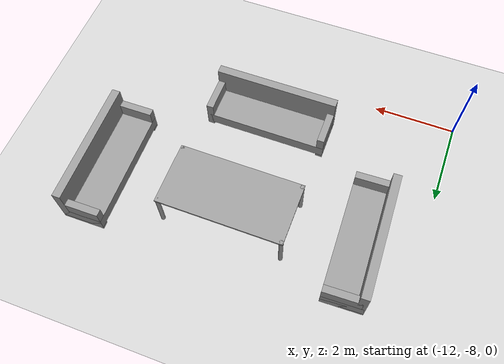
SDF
<sdf version="1.6">
 <world name="default">
  <model name="ground_plane">
   <static>1</static>
   <link name="link">
    <collision name="collision">
     <geometry><plane><normal>0 0 1</normal><size>100 100</size></plane></geometry>
     <surface><friction><ode><mu>100</mu><mu2>50</mu2></ode></friction></surface>
    </collision>
    <visual name="visual">
     <cast_shadows>0</cast_shadows>
     <geometry><plane><normal>0 0 1</normal><size>100 100</size></plane></geometry>
     <material>
      <script><uri>file://media/materials/scripts/gazebo.material</uri><name>Gazebo/Grey</name></script>
     </material>
    </visual>
   </link>
  </model>
  <model name="diningTable_1">
   <link name="link_0">
    <pose>-1.45 -0.7 -0.015 0 -0 0</pose>
    <inertial>
     <mass>1</mass>
     <inertia><ixx>0.145833</ixx><ixy>0</ixy><ixz>0</ixz><iyy>0.145833</iyy><iyz>0</iyz><izz>0.125</izz></inertia>
    </inertial>
    <visual name="visual">
     <geometry><cylinder><radius>0.05</radius><length>1</length></cylinder></geometry>
     <material>
      <lighting>1</lighting>
      <script><uri>file://media/materials/scripts/gazebo.material</uri><name>Gazebo/Grey</name></script>
      <shader type="pixel"><normal_map>__default__</normal_map></shader>
      <ambient>0.3 0.3 0.3 1</ambient>
      <diffuse>0.7 0.7 0.7 1</diffuse>
      <specular>0.01 0.01 0.01 1</specular>
      <emissive>0 0 0 1</emissive>
     </material>
    </visual>
    <collision name="collision">
     <geometry><cylinder><radius>0.05</radius><length>1</length></cylinder></geometry>
     <surface>
      <friction>
       <ode><mu>1</mu><mu2>1</mu2><fdir1>0 0 0</fdir1><slip1>0</slip1><slip2>0</slip2></ode>
       <torsional>
        <coefficient>1</coefficient>
        <patch_radius>0</patch_radius>
        <surface_radius>0</surface_radius>
        <use_patch_radius>1</use_patch_radius>
        <ode><slip>0</slip></ode>
       </torsional>
      </friction>
      <bounce><restitution_coefficient>0</restitution_coefficient><threshold>1e+06</threshold></bounce>
      <contact>
       <collide_without_contact>0</collide_without_contact>
       <collide_without_contact_bitmask>1</collide_without_contact_bitmask>
       <collide_bitmask>1</collide_bitmask>
       <ode>
        <soft_cfm>0</soft_cfm>
        <soft_erp>0.2</soft_erp>
        <kp>1e+13</kp>
        <kd>1</kd>
        <max_vel>0.01</max_vel>
        <min_depth>0</min_depth>
       </ode>
       <bullet>
        <split_impulse>1</split_impulse>
        <split_impulse_penetration_threshold>-0.01</split_impulse_penetration_threshold>
        <soft_cfm>0</soft_cfm>
        <soft_erp>0.2</soft_erp>
        <kp>1e+13</kp>
        <kd>1</kd>
       </bullet>
      </contact>
     </surface>
    </collision>
   </link>
   <link name="link_0_clone">
    <pose>1.45 0.7 -0.015 0 -0 0</pose>
    <inertial>
     <mass>1</mass>
     <inertia><ixx>0.145833</ixx><ixy>0</ixy><ixz>0</ixz><iyy>0.145833</iyy><iyz>0</iyz><izz>0.125</izz></inertia>
    </inertial>
    <visual name="visual">
     <geometry><cylinder><radius>0.05</radius><length>1</length></cylinder></geometry>
     <material>
      <lighting>1</lighting>
      <script><uri>file://media/materials/scripts/gazebo.material</uri><name>Gazebo/Grey</name></script>
      <shader type="pixel"><normal_map>__default__</normal_map></shader>
      <ambient>0.3 0.3 0.3 1</ambient>
      <diffuse>0.7 0.7 0.7 1</diffuse>
      <specular>0.01 0.01 0.01 1</specular>
      <emissive>0 0 0 1</emissive>
     </material>
    </visual>
    <collision name="collision">
     <geometry><cylinder><radius>0.05</radius><length>1</length></cylinder></geometry>
     <surface>
      <friction>
       <ode><mu>1</mu><mu2>1</mu2><fdir1>0 0 0</fdir1><slip1>0</slip1><slip2>0</slip2></ode>
       <torsional>
        <coefficient>1</coefficient>
        <patch_radius>0</patch_radius>
        <surface_radius>0</surface_radius>
        <use_patch_radius>1</use_patch_radius>
        <ode><slip>0</slip></ode>
       </torsional>
      </friction>
      <bounce><restitution_coefficient>0</restitution_coefficient><threshold>1e+06</threshold></bounce>
      <contact>
       <collide_without_contact>0</collide_without_contact>
       <collide_without_contact_bitmask>1</collide_without_contact_bitmask>
       <collide_bitmask>1</collide_bitmask>
       <ode>
        <soft_cfm>0</soft_cfm>
        <soft_erp>0.2</soft_erp>
        <kp>1e+13</kp>
        <kd>1</kd>
        <max_vel>0.01</max_vel>
        <min_depth>0</min_depth>
       </ode>
       <bullet>
        <split_impulse>1</split_impulse>
        <split_impulse_penetration_threshold>-0.01</split_impulse_penetration_threshold>
        <soft_cfm>0</soft_cfm>
        <soft_erp>0.2</soft_erp>
        <kp>1e+13</kp>
        <kd>1</kd>
       </bullet>
      </contact>
     </surface>
    </collision>
   </link>
   <link name="link_0_clone_0">
    <pose>1.45 -0.7 -0.015 0 -0 0</pose>
    <inertial>
     <mass>1</mass>
     <inertia><ixx>0.145833</ixx><ixy>0</ixy><ixz>0</ixz><iyy>0.145833</iyy><iyz>0</iyz><izz>0.125</izz></inertia>
    </inertial>
    <visual name="visual">
     <geometry><cylinder><radius>0.05</radius><length>1</length></cylinder></geometry>
     <material>
      <lighting>1</lighting>
      <script><uri>file://media/materials/scripts/gazebo.material</uri><name>Gazebo/Grey</name></script>
      <shader type="pixel"><normal_map>__default__</normal_map></shader>
      <ambient>0.3 0.3 0.3 1</ambient>
      <diffuse>0.7 0.7 0.7 1</diffuse>
      <specular>0.01 0.01 0.01 1</specular>
      <emissive>0 0 0 1</emissive>
     </material>
    </visual>
    <collision name="collision">
     <geometry><cylinder><radius>0.05</radius><length>1</length></cylinder></geometry>
     <surface>
      <friction>
       <ode><mu>1</mu><mu2>1</mu2><fdir1>0 0 0</fdir1><slip1>0</slip1><slip2>0</slip2></ode>
       <torsional>
        <coefficient>1</coefficient>
        <patch_radius>0</patch_radius>
        <surface_radius>0</surface_radius>
        <use_patch_radius>1</use_patch_radius>
        <ode><slip>0</slip></ode>
       </torsional>
      </friction>
      <bounce><restitution_coefficient>0</restitution_coefficient><threshold>1e+06</threshold></bounce>
      <contact>
       <collide_without_contact>0</collide_without_contact>
       <collide_without_contact_bitmask>1</collide_without_contact_bitmask>
       <collide_bitmask>1</collide_bitmask>
       <ode>
        <soft_cfm>0</soft_cfm>
        <soft_erp>0.2</soft_erp>
        <kp>1e+13</kp>
        <kd>1</kd>
        <max_vel>0.01</max_vel>
        <min_depth>0</min_depth>
       </ode>
       <bullet>
        <split_impulse>1</split_impulse>
        <split_impulse_penetration_threshold>-0.01</split_impulse_penetration_threshold>
        <soft_cfm>0</soft_cfm>
        <soft_erp>0.2</soft_erp>
        <kp>1e+13</kp>
        <kd>1</kd>
       </bullet>
      </contact>
     </surface>
    </collision>
   </link>
   <link name="link_0_clone_1">
    <pose>-1.45 0.7 -0.015 0 -0 0</pose>
    <inertial>
     <mass>1</mass>
     <inertia><ixx>0.145833</ixx><ixy>0</ixy><ixz>0</ixz><iyy>0.145833</iyy><iyz>0</iyz><izz>0.125</izz></inertia>
    </inertial>
    <visual name="visual">
     <geometry><cylinder><radius>0.05</radius><length>1</length></cylinder></geometry>
     <material>
      <lighting>1</lighting>
      <script><uri>file://media/materials/scripts/gazebo.material</uri><name>Gazebo/Grey</name></script>
      <shader type="pixel"><normal_map>__default__</normal_map></shader>
      <ambient>0.3 0.3 0.3 1</ambient>
      <diffuse>0.7 0.7 0.7 1</diffuse>
      <specular>0.01 0.01 0.01 1</specular>
      <emissive>0 0 0 1</emissive>
     </material>
    </visual>
    <collision name="collision">
     <geometry><cylinder><radius>0.05</radius><length>1</length></cylinder></geometry>
     <surface>
      <friction>
       <ode><mu>1</mu><mu2>1</mu2><fdir1>0 0 0</fdir1><slip1>0</slip1><slip2>0</slip2></ode>
       <torsional>
        <coefficient>1</coefficient>
        <patch_radius>0</patch_radius>
        <surface_radius>0</surface_radius>
        <use_patch_radius>1</use_patch_radius>
        <ode><slip>0</slip></ode>
       </torsional>
      </friction>
      <bounce><restitution_coefficient>0</restitution_coefficient><threshold>1e+06</threshold></bounce>
      <contact>
       <collide_without_contact>0</collide_without_contact>
       <collide_without_contact_bitmask>1</collide_without_contact_bitmask>
       <collide_bitmask>1</collide_bitmask>
       <ode>
        <soft_cfm>0</soft_cfm>
        <soft_erp>0.2</soft_erp>
        <kp>1e+13</kp>
        <kd>1</kd>
        <max_vel>0.01</max_vel>
        <min_depth>0</min_depth>
       </ode>
       <bullet>
        <split_impulse>1</split_impulse>
        <split_impulse_penetration_threshold>-0.01</split_impulse_penetration_threshold>
        <soft_cfm>0</soft_cfm>
        <soft_erp>0.2</soft_erp>
        <kp>1e+13</kp>
        <kd>1</kd>
       </bullet>
      </contact>
     </surface>
    </collision>
   </link>
   <link name="link_1">
    <pose>-0 -0 0.06 0 -0 0</pose>
    <inertial>
     <mass>1</mass>
     <inertia>
      <ixx>0.166667</ixx>
      <ixy>0</ixy>
      <ixz>0</ixz>
      <iyy>0.166667</iyy>
      <iyz>0</iyz>
      <izz>0.166667</izz>
     </inertia>
    </inertial>
    <visual name="visual">
     <pose>0 0 0.4 0 -0 0</pose>
     <geometry><box><size>3 1.5 0.05</size></box></geometry>
     <material>
      <lighting>1</lighting>
      <script><uri>file://media/materials/scripts/gazebo.material</uri><name>Gazebo/Grey</name></script>
      <shader type="pixel"><normal_map>__default__</normal_map></shader>
      <ambient>0.3 0.3 0.3 1</ambient>
      <diffuse>0.7 0.7 0.7 1</diffuse>
      <specular>0.01 0.01 0.01 1</specular>
      <emissive>0 0 0 1</emissive>
     </material>
    </visual>
    <collision name="collision">
     <pose>0 0 0.4 0 -0 0</pose>
     <geometry><box><size>3 1.5 0.05</size></box></geometry>
     <surface>
      <friction>
       <ode><mu>1</mu><mu2>1</mu2><fdir1>0 0 0</fdir1><slip1>0</slip1><slip2>0</slip2></ode>
       <torsional>
        <coefficient>1</coefficient>
        <patch_radius>0</patch_radius>
        <surface_radius>0</surface_radius>
        <use_patch_radius>1</use_patch_radius>
        <ode><slip>0</slip></ode>
       </torsional>
      </friction>
      <bounce><restitution_coefficient>0</restitution_coefficient><threshold>1e+06</threshold></bounce>
      <contact>
       <collide_without_contact>0</collide_without_contact>
       <collide_without_contact_bitmask>1</collide_without_contact_bitmask>
       <collide_bitmask>1</collide_bitmask>
       <ode>
        <soft_cfm>0</soft_cfm>
        <soft_erp>0.2</soft_erp>
        <kp>1e+13</kp>
        <kd>1</kd>
        <max_vel>0.01</max_vel>
        <min_depth>0</min_depth>
       </ode>
       <bullet>
        <split_impulse>1</split_impulse>
        <split_impulse_penetration_threshold>-0.01</split_impulse_penetration_threshold>
        <soft_cfm>0</soft_cfm>
        <soft_erp>0.2</soft_erp>
        <kp>1e+13</kp>
        <kd>1</kd>
       </bullet>
      </contact>
     </surface>
    </collision>
   </link>
   <joint name="link_1_JOINT_4" type="fixed">
    <parent>link_1</parent>
    <child>link_0_clone</child>
    <physics>
     <ode><limit><cfm>0</cfm><erp>0.2</erp></limit><suspension><cfm>0</cfm><erp>0.2</erp></suspension></ode>
    </physics>
   </joint>
   <joint name="link_1_JOINT_5" type="revolute">
    <parent>link_1</parent>
    <child>link_0_clone_0</child>
    <axis>
     <xyz>1 0 0</xyz>
     <use_parent_model_frame>0</use_parent_model_frame>
     <limit>
      <lower>-1.79769e+308</lower>
      <upper>1.79769e+308</upper>
      <effort>-1</effort>
      <velocity>-1</velocity>
     </limit>
     <dynamics>
      <spring_reference>0</spring_reference>
      <spring_stiffness>0</spring_stiffness>
      <damping>0</damping>
     </dynamics>
    </axis>
    <physics>
     <ode><limit><cfm>0</cfm><erp>0.2</erp></limit><suspension><cfm>0</cfm><erp>0.2</erp></suspension></ode>
    </physics>
   </joint>
   <joint name="link_1_JOINT_6" type="fixed">
    <parent>link_1</parent>
    <child>link_0_clone_1</child>
    <physics>
     <ode><limit><cfm>0</cfm><erp>0.2</erp></limit><suspension><cfm>0</cfm><erp>0.2</erp></suspension></ode>
    </physics>
   </joint>
   <joint name="link_1_JOINT_7" type="fixed">
    <parent>link_1</parent>
    <child>link_0</child>
    <physics>
     <ode><limit><cfm>0</cfm><erp>0.2</erp></limit><suspension><cfm>0</cfm><erp>0.2</erp></suspension></ode>
    </physics>
   </joint>
   <static>0</static>
   <pose>-7.61085 -4.02853 0.514998 0 -2e-06 -0.002081</pose>
  </model>
  <model name="couch">
   <link name="link_5">
    <pose>0 0.1 -0.1525 0 -0 0</pose>
    <inertial>
     <mass>1</mass>
     <inertia>
      <ixx>0.166667</ixx>
      <ixy>0</ixy>
      <ixz>0</ixz>
      <iyy>0.166667</iyy>
      <iyz>0</iyz>
      <izz>0.166667</izz>
     </inertia>
    </inertial>
    <visual name="visual">
     <geometry><box><size>3 1 0.3</size></box></geometry>
     <material>
      <lighting>1</lighting>
      <script><uri>file://media/materials/scripts/gazebo.material</uri><name>Gazebo/Grey</name></script>
      <shader type="pixel"><normal_map>__default__</normal_map></shader>
      <ambient>0.3 0.3 0.3 1</ambient>
      <diffuse>0.7 0.7 0.7 1</diffuse>
      <specular>0.01 0.01 0.01 1</specular>
      <emissive>0 0 0 1</emissive>
     </material>
    </visual>
    <collision name="collision">
     <geometry><box><size>3 1 0.3</size></box></geometry>
     <surface>
      <friction>
       <ode><mu>1</mu><mu2>1</mu2><fdir1>0 0 0</fdir1><slip1>0</slip1><slip2>0</slip2></ode>
       <torsional>
        <coefficient>1</coefficient>
        <patch_radius>0</patch_radius>
        <surface_radius>0</surface_radius>
        <use_patch_radius>1</use_patch_radius>
        <ode><slip>0</slip></ode>
       </torsional>
      </friction>
      <bounce><restitution_coefficient>0</restitution_coefficient><threshold>1e+06</threshold></bounce>
      <contact>
       <collide_without_contact>0</collide_without_contact>
       <collide_without_contact_bitmask>1</collide_without_contact_bitmask>
       <collide_bitmask>1</collide_bitmask>
       <ode>
        <soft_cfm>0</soft_cfm>
        <soft_erp>0.2</soft_erp>
        <kp>1e+13</kp>
        <kd>1</kd>
        <max_vel>0.01</max_vel>
        <min_depth>0</min_depth>
       </ode>
       <bullet>
        <split_impulse>1</split_impulse>
        <split_impulse_penetration_threshold>-0.01</split_impulse_penetration_threshold>
        <soft_cfm>0</soft_cfm>
        <soft_erp>0.2</soft_erp>
        <kp>1e+13</kp>
        <kd>1</kd>
       </bullet>
      </contact>
     </surface>
    </collision>
   </link>
   <link name="link_6">
    <pose>0 -0.3 0.1975 0 -0 0</pose>
    <inertial>
     <mass>1</mass>
     <inertia>
      <ixx>0.166667</ixx>
      <ixy>0</ixy>
      <ixz>0</ixz>
      <iyy>0.166667</iyy>
      <iyz>0</iyz>
      <izz>0.166667</izz>
     </inertia>
    </inertial>
    <visual name="visual">
     <geometry><box><size>3 0.2 1</size></box></geometry>
     <material>
      <lighting>1</lighting>
      <script><uri>file://media/materials/scripts/gazebo.material</uri><name>Gazebo/Grey</name></script>
      <shader type="pixel"><normal_map>__default__</normal_map></shader>
      <ambient>0.3 0.3 0.3 1</ambient>
      <diffuse>0.7 0.7 0.7 1</diffuse>
      <specular>0.01 0.01 0.01 1</specular>
      <emissive>0 0 0 1</emissive>
     </material>
    </visual>
    <collision name="collision">
     <geometry><box><size>3 0.2 1</size></box></geometry>
     <surface>
      <friction>
       <ode><mu>1</mu><mu2>1</mu2><fdir1>0 0 0</fdir1><slip1>0</slip1><slip2>0</slip2></ode>
       <torsional>
        <coefficient>1</coefficient>
        <patch_radius>0</patch_radius>
        <surface_radius>0</surface_radius>
        <use_patch_radius>1</use_patch_radius>
        <ode><slip>0</slip></ode>
       </torsional>
      </friction>
      <bounce><restitution_coefficient>0</restitution_coefficient><threshold>1e+06</threshold></bounce>
      <contact>
       <collide_without_contact>0</collide_without_contact>
       <collide_without_contact_bitmask>1</collide_without_contact_bitmask>
       <collide_bitmask>1</collide_bitmask>
       <ode>
        <soft_cfm>0</soft_cfm>
        <soft_erp>0.2</soft_erp>
        <kp>1e+13</kp>
        <kd>1</kd>
        <max_vel>0.01</max_vel>
        <min_depth>0</min_depth>
       </ode>
       <bullet>
        <split_impulse>1</split_impulse>
        <split_impulse_penetration_threshold>-0.01</split_impulse_penetration_threshold>
        <soft_cfm>0</soft_cfm>
        <soft_erp>0.2</soft_erp>
        <kp>1e+13</kp>
        <kd>1</kd>
       </bullet>
      </contact>
     </surface>
    </collision>
   </link>
   <link name="link_7">
    <pose>-1.415 0.1 -0.0225 0 -0 0</pose>
    <inertial>
     <mass>1</mass>
     <inertia>
      <ixx>0.166667</ixx>
      <ixy>0</ixy>
      <ixz>0</ixz>
      <iyy>0.166667</iyy>
      <iyz>0</iyz>
      <izz>0.166667</izz>
     </inertia>
    </inertial>
    <visual name="visual">
     <geometry><box><size>0.17 1 0.7</size></box></geometry>
     <material>
      <lighting>1</lighting>
      <script><uri>file://media/materials/scripts/gazebo.material</uri><name>Gazebo/Grey</name></script>
      <shader type="pixel"><normal_map>__default__</normal_map></shader>
      <ambient>0.3 0.3 0.3 1</ambient>
      <diffuse>0.7 0.7 0.7 1</diffuse>
      <specular>0.01 0.01 0.01 1</specular>
      <emissive>0 0 0 1</emissive>
     </material>
    </visual>
    <collision name="collision">
     <geometry><box><size>0.17 1 0.7</size></box></geometry>
     <surface>
      <friction>
       <ode><mu>1</mu><mu2>1</mu2><fdir1>0 0 0</fdir1><slip1>0</slip1><slip2>0</slip2></ode>
       <torsional>
        <coefficient>1</coefficient>
        <patch_radius>0</patch_radius>
        <surface_radius>0</surface_radius>
        <use_patch_radius>1</use_patch_radius>
        <ode><slip>0</slip></ode>
       </torsional>
      </friction>
      <bounce><restitution_coefficient>0</restitution_coefficient><threshold>1e+06</threshold></bounce>
      <contact>
       <collide_without_contact>0</collide_without_contact>
       <collide_without_contact_bitmask>1</collide_without_contact_bitmask>
       <collide_bitmask>1</collide_bitmask>
       <ode>
        <soft_cfm>0</soft_cfm>
        <soft_erp>0.2</soft_erp>
        <kp>1e+13</kp>
        <kd>1</kd>
        <max_vel>0.01</max_vel>
        <min_depth>0</min_depth>
       </ode>
       <bullet>
        <split_impulse>1</split_impulse>
        <split_impulse_penetration_threshold>-0.01</split_impulse_penetration_threshold>
        <soft_cfm>0</soft_cfm>
        <soft_erp>0.2</soft_erp>
        <kp>1e+13</kp>
        <kd>1</kd>
       </bullet>
      </contact>
     </surface>
    </collision>
   </link>
   <link name="link_7_clone">
    <pose>1.415 0.1 -0.0225 0 -0 0</pose>
    <inertial>
     <mass>1</mass>
     <inertia>
      <ixx>0.166667</ixx>
      <ixy>0</ixy>
      <ixz>0</ixz>
      <iyy>0.166667</iyy>
      <iyz>0</iyz>
      <izz>0.166667</izz>
     </inertia>
    </inertial>
    <visual name="visual">
     <geometry><box><size>0.17 1 0.7</size></box></geometry>
     <material>
      <lighting>1</lighting>
      <script><uri>file://media/materials/scripts/gazebo.material</uri><name>Gazebo/Grey</name></script>
      <shader type="pixel"><normal_map>__default__</normal_map></shader>
      <ambient>0.3 0.3 0.3 1</ambient>
      <diffuse>0.7 0.7 0.7 1</diffuse>
      <specular>0.01 0.01 0.01 1</specular>
      <emissive>0 0 0 1</emissive>
     </material>
    </visual>
    <collision name="collision">
     <geometry><box><size>0.17 1 0.7</size></box></geometry>
     <surface>
      <friction>
       <ode><mu>1</mu><mu2>1</mu2><fdir1>0 0 0</fdir1><slip1>0</slip1><slip2>0</slip2></ode>
       <torsional>
        <coefficient>1</coefficient>
        <patch_radius>0</patch_radius>
        <surface_radius>0</surface_radius>
        <use_patch_radius>1</use_patch_radius>
        <ode><slip>0</slip></ode>
       </torsional>
      </friction>
      <bounce><restitution_coefficient>0</restitution_coefficient><threshold>1e+06</threshold></bounce>
      <contact>
       <collide_without_contact>0</collide_without_contact>
       <collide_without_contact_bitmask>1</collide_without_contact_bitmask>
       <collide_bitmask>1</collide_bitmask>
       <ode>
        <soft_cfm>0</soft_cfm>
        <soft_erp>0.2</soft_erp>
        <kp>1e+13</kp>
        <kd>1</kd>
        <max_vel>0.01</max_vel>
        <min_depth>0</min_depth>
       </ode>
       <bullet>
        <split_impulse>1</split_impulse>
        <split_impulse_penetration_threshold>-0.01</split_impulse_penetration_threshold>
        <soft_cfm>0</soft_cfm>
        <soft_erp>0.2</soft_erp>
        <kp>1e+13</kp>
        <kd>1</kd>
       </bullet>
      </contact>
     </surface>
    </collision>
   </link>
   <joint name="link_5_JOINT_19" type="fixed">
    <parent>link_5</parent>
    <child>link_7_clone</child>
    <physics>
     <ode><limit><cfm>0</cfm><erp>0.2</erp></limit><suspension><cfm>0</cfm><erp>0.2</erp></suspension></ode>
    </physics>
   </joint>
   <joint name="link_5_JOINT_20" type="revolute">
    <parent>link_5</parent>
    <child>link_7</child>
    <axis>
     <xyz>1 0 0</xyz>
     <use_parent_model_frame>0</use_parent_model_frame>
     <limit>
      <lower>-1.79769e+308</lower>
      <upper>1.79769e+308</upper>
      <effort>-1</effort>
      <velocity>-1</velocity>
     </limit>
     <dynamics>
      <spring_reference>0</spring_reference>
      <spring_stiffness>0</spring_stiffness>
      <damping>0</damping>
     </dynamics>
    </axis>
    <physics>
     <ode><limit><cfm>0</cfm><erp>0.2</erp></limit><suspension><cfm>0</cfm><erp>0.2</erp></suspension></ode>
    </physics>
   </joint>
   <joint name="link_6_JOINT_18" type="fixed">
    <parent>link_6</parent>
    <child>link_5</child>
    <physics>
     <ode><limit><cfm>0</cfm><erp>0.2</erp></limit><suspension><cfm>0</cfm><erp>0.2</erp></suspension></ode>
    </physics>
   </joint>
   <static>0</static>
   <pose>-7.62403 -6.76572 0.3725 0 -0 0.000506</pose>
  </model>
  <model name="couch_clone">
   <link name="link_5">
    <pose>0 0.1 -0.1525 0 -0 0</pose>
    <inertial>
     <mass>1</mass>
     <inertia>
      <ixx>0.166667</ixx>
      <ixy>0</ixy>
      <ixz>0</ixz>
      <iyy>0.166667</iyy>
      <iyz>0</iyz>
      <izz>0.166667</izz>
     </inertia>
    </inertial>
    <visual name="visual">
     <geometry><box><size>3 1 0.3</size></box></geometry>
     <material>
      <lighting>1</lighting>
      <script><uri>file://media/materials/scripts/gazebo.material</uri><name>Gazebo/Grey</name></script>
      <shader type="pixel"><normal_map>__default__</normal_map></shader>
      <ambient>0.3 0.3 0.3 1</ambient>
      <diffuse>0.7 0.7 0.7 1</diffuse>
      <specular>0.01 0.01 0.01 1</specular>
      <emissive>0 0 0 1</emissive>
     </material>
    </visual>
    <collision name="collision">
     <geometry><box><size>3 1 0.3</size></box></geometry>
     <surface>
      <friction>
       <ode><mu>1</mu><mu2>1</mu2><fdir1>0 0 0</fdir1><slip1>0</slip1><slip2>0</slip2></ode>
       <torsional>
        <coefficient>1</coefficient>
        <patch_radius>0</patch_radius>
        <surface_radius>0</surface_radius>
        <use_patch_radius>1</use_patch_radius>
        <ode><slip>0</slip></ode>
       </torsional>
      </friction>
      <bounce><restitution_coefficient>0</restitution_coefficient><threshold>1e+06</threshold></bounce>
      <contact>
       <collide_without_contact>0</collide_without_contact>
       <collide_without_contact_bitmask>1</collide_without_contact_bitmask>
       <collide_bitmask>1</collide_bitmask>
       <ode>
        <soft_cfm>0</soft_cfm>
        <soft_erp>0.2</soft_erp>
        <kp>1e+13</kp>
        <kd>1</kd>
        <max_vel>0.01</max_vel>
        <min_depth>0</min_depth>
       </ode>
       <bullet>
        <split_impulse>1</split_impulse>
        <split_impulse_penetration_threshold>-0.01</split_impulse_penetration_threshold>
        <soft_cfm>0</soft_cfm>
        <soft_erp>0.2</soft_erp>
        <kp>1e+13</kp>
        <kd>1</kd>
       </bullet>
      </contact>
     </surface>
    </collision>
   </link>
   <link name="link_6">
    <pose>0 -0.3 0.1975 0 -0 0</pose>
    <inertial>
     <mass>1</mass>
     <inertia>
      <ixx>0.166667</ixx>
      <ixy>0</ixy>
      <ixz>0</ixz>
      <iyy>0.166667</iyy>
      <iyz>0</iyz>
      <izz>0.166667</izz>
     </inertia>
    </inertial>
    <visual name="visual">
     <geometry><box><size>3 0.2 1</size></box></geometry>
     <material>
      <lighting>1</lighting>
      <script><uri>file://media/materials/scripts/gazebo.material</uri><name>Gazebo/Grey</name></script>
      <shader type="pixel"><normal_map>__default__</normal_map></shader>
      <ambient>0.3 0.3 0.3 1</ambient>
      <diffuse>0.7 0.7 0.7 1</diffuse>
      <specular>0.01 0.01 0.01 1</specular>
      <emissive>0 0 0 1</emissive>
     </material>
    </visual>
    <collision name="collision">
     <geometry><box><size>3 0.2 1</size></box></geometry>
     <surface>
      <friction>
       <ode><mu>1</mu><mu2>1</mu2><fdir1>0 0 0</fdir1><slip1>0</slip1><slip2>0</slip2></ode>
       <torsional>
        <coefficient>1</coefficient>
        <patch_radius>0</patch_radius>
        <surface_radius>0</surface_radius>
        <use_patch_radius>1</use_patch_radius>
        <ode><slip>0</slip></ode>
       </torsional>
      </friction>
      <bounce><restitution_coefficient>0</restitution_coefficient><threshold>1e+06</threshold></bounce>
      <contact>
       <collide_without_contact>0</collide_without_contact>
       <collide_without_contact_bitmask>1</collide_without_contact_bitmask>
       <collide_bitmask>1</collide_bitmask>
       <ode>
        <soft_cfm>0</soft_cfm>
        <soft_erp>0.2</soft_erp>
        <kp>1e+13</kp>
        <kd>1</kd>
        <max_vel>0.01</max_vel>
        <min_depth>0</min_depth>
       </ode>
       <bullet>
        <split_impulse>1</split_impulse>
        <split_impulse_penetration_threshold>-0.01</split_impulse_penetration_threshold>
        <soft_cfm>0</soft_cfm>
        <soft_erp>0.2</soft_erp>
        <kp>1e+13</kp>
        <kd>1</kd>
       </bullet>
      </contact>
     </surface>
    </collision>
   </link>
   <link name="link_7">
    <pose>-1.415 0.1 -0.0225 0 -0 0</pose>
    <inertial>
     <mass>1</mass>
     <inertia>
      <ixx>0.166667</ixx>
      <ixy>0</ixy>
      <ixz>0</ixz>
      <iyy>0.166667</iyy>
      <iyz>0</iyz>
      <izz>0.166667</izz>
     </inertia>
    </inertial>
    <visual name="visual">
     <geometry><box><size>0.17 1 0.7</size></box></geometry>
     <material>
      <lighting>1</lighting>
      <script><uri>file://media/materials/scripts/gazebo.material</uri><name>Gazebo/Grey</name></script>
      <shader type="pixel"><normal_map>__default__</normal_map></shader>
      <ambient>0.3 0.3 0.3 1</ambient>
      <diffuse>0.7 0.7 0.7 1</diffuse>
      <specular>0.01 0.01 0.01 1</specular>
      <emissive>0 0 0 1</emissive>
     </material>
    </visual>
    <collision name="collision">
     <geometry><box><size>0.17 1 0.7</size></box></geometry>
     <surface>
      <friction>
       <ode><mu>1</mu><mu2>1</mu2><fdir1>0 0 0</fdir1><slip1>0</slip1><slip2>0</slip2></ode>
       <torsional>
        <coefficient>1</coefficient>
        <patch_radius>0</patch_radius>
        <surface_radius>0</surface_radius>
        <use_patch_radius>1</use_patch_radius>
        <ode><slip>0</slip></ode>
       </torsional>
      </friction>
      <bounce><restitution_coefficient>0</restitution_coefficient><threshold>1e+06</threshold></bounce>
      <contact>
       <collide_without_contact>0</collide_without_contact>
       <collide_without_contact_bitmask>1</collide_without_contact_bitmask>
       <collide_bitmask>1</collide_bitmask>
       <ode>
        <soft_cfm>0</soft_cfm>
        <soft_erp>0.2</soft_erp>
        <kp>1e+13</kp>
        <kd>1</kd>
        <max_vel>0.01</max_vel>
        <min_depth>0</min_depth>
       </ode>
       <bullet>
        <split_impulse>1</split_impulse>
        <split_impulse_penetration_threshold>-0.01</split_impulse_penetration_threshold>
        <soft_cfm>0</soft_cfm>
        <soft_erp>0.2</soft_erp>
        <kp>1e+13</kp>
        <kd>1</kd>
       </bullet>
      </contact>
     </surface>
    </collision>
   </link>
   <link name="link_7_clone">
    <pose>1.415 0.1 -0.0225 0 -0 0</pose>
    <inertial>
     <mass>1</mass>
     <inertia>
      <ixx>0.166667</ixx>
      <ixy>0</ixy>
      <ixz>0</ixz>
      <iyy>0.166667</iyy>
      <iyz>0</iyz>
      <izz>0.166667</izz>
     </inertia>
    </inertial>
    <visual name="visual">
     <geometry><box><size>0.17 1 0.7</size></box></geometry>
     <material>
      <lighting>1</lighting>
      <script><uri>file://media/materials/scripts/gazebo.material</uri><name>Gazebo/Grey</name></script>
      <shader type="pixel"><normal_map>__default__</normal_map></shader>
      <ambient>0.3 0.3 0.3 1</ambient>
      <diffuse>0.7 0.7 0.7 1</diffuse>
      <specular>0.01 0.01 0.01 1</specular>
      <emissive>0 0 0 1</emissive>
     </material>
    </visual>
    <collision name="collision">
     <geometry><box><size>0.17 1 0.7</size></box></geometry>
     <surface>
      <friction>
       <ode><mu>1</mu><mu2>1</mu2><fdir1>0 0 0</fdir1><slip1>0</slip1><slip2>0</slip2></ode>
       <torsional>
        <coefficient>1</coefficient>
        <patch_radius>0</patch_radius>
        <surface_radius>0</surface_radius>
        <use_patch_radius>1</use_patch_radius>
        <ode><slip>0</slip></ode>
       </torsional>
      </friction>
      <bounce><restitution_coefficient>0</restitution_coefficient><threshold>1e+06</threshold></bounce>
      <contact>
       <collide_without_contact>0</collide_without_contact>
       <collide_without_contact_bitmask>1</collide_without_contact_bitmask>
       <collide_bitmask>1</collide_bitmask>
       <ode>
        <soft_cfm>0</soft_cfm>
        <soft_erp>0.2</soft_erp>
        <kp>1e+13</kp>
        <kd>1</kd>
        <max_vel>0.01</max_vel>
        <min_depth>0</min_depth>
       </ode>
       <bullet>
        <split_impulse>1</split_impulse>
        <split_impulse_penetration_threshold>-0.01</split_impulse_penetration_threshold>
        <soft_cfm>0</soft_cfm>
        <soft_erp>0.2</soft_erp>
        <kp>1e+13</kp>
        <kd>1</kd>
       </bullet>
      </contact>
     </surface>
    </collision>
   </link>
   <joint name="link_5_JOINT_19" type="fixed">
    <parent>link_5</parent>
    <child>link_7_clone</child>
    <physics>
     <ode><limit><cfm>0</cfm><erp>0.2</erp></limit><suspension><cfm>0</cfm><erp>0.2</erp></suspension></ode>
    </physics>
   </joint>
   <joint name="link_5_JOINT_20" type="revolute">
    <parent>link_5</parent>
    <child>link_7</child>
    <axis>
     <xyz>1 0 0</xyz>
     <use_parent_model_frame>0</use_parent_model_frame>
     <limit>
      <lower>-1.79769e+308</lower>
      <upper>1.79769e+308</upper>
      <effort>-1</effort>
      <velocity>-1</velocity>
     </limit>
     <dynamics>
      <spring_reference>0</spring_reference>
      <spring_stiffness>0</spring_stiffness>
      <damping>0</damping>
     </dynamics>
    </axis>
    <physics>
     <ode><limit><cfm>0</cfm><erp>0.2</erp></limit><suspension><cfm>0</cfm><erp>0.2</erp></suspension></ode>
    </physics>
   </joint>
   <joint name="link_6_JOINT_18" type="fixed">
    <parent>link_6</parent>
    <child>link_5</child>
    <physics>
     <ode><limit><cfm>0</cfm><erp>0.2</erp></limit><suspension><cfm>0</cfm><erp>0.2</erp></suspension></ode>
    </physics>
   </joint>
   <static>0</static>
   <pose>-4.36641 -4.09755 0.3725 0 -0 1.5814</pose>
  </model>
  <model name="couch_clone_clone">
   <link name="link_5">
    <pose>0 0.1 -0.1525 0 -0 0</pose>
    <inertial>
     <mass>1</mass>
     <inertia>
      <ixx>0.166667</ixx>
      <ixy>0</ixy>
      <ixz>0</ixz>
      <iyy>0.166667</iyy>
      <iyz>0</iyz>
      <izz>0.166667</izz>
     </inertia>
    </inertial>
    <visual name="visual">
     <geometry><box><size>3 1 0.3</size></box></geometry>
     <material>
      <lighting>1</lighting>
      <script><uri>file://media/materials/scripts/gazebo.material</uri><name>Gazebo/Grey</name></script>
      <shader type="pixel"><normal_map>__default__</normal_map></shader>
      <ambient>0.3 0.3 0.3 1</ambient>
      <diffuse>0.7 0.7 0.7 1</diffuse>
      <specular>0.01 0.01 0.01 1</specular>
      <emissive>0 0 0 1</emissive>
     </material>
    </visual>
    <collision name="collision">
     <geometry><box><size>3 1 0.3</size></box></geometry>
     <surface>
      <friction>
       <ode><mu>1</mu><mu2>1</mu2><fdir1>0 0 0</fdir1><slip1>0</slip1><slip2>0</slip2></ode>
       <torsional>
        <coefficient>1</coefficient>
        <patch_radius>0</patch_radius>
        <surface_radius>0</surface_radius>
        <use_patch_radius>1</use_patch_radius>
        <ode><slip>0</slip></ode>
       </torsional>
      </friction>
      <bounce><restitution_coefficient>0</restitution_coefficient><threshold>1e+06</threshold></bounce>
      <contact>
       <collide_without_contact>0</collide_without_contact>
       <collide_without_contact_bitmask>1</collide_without_contact_bitmask>
       <collide_bitmask>1</collide_bitmask>
       <ode>
        <soft_cfm>0</soft_cfm>
        <soft_erp>0.2</soft_erp>
        <kp>1e+13</kp>
        <kd>1</kd>
        <max_vel>0.01</max_vel>
        <min_depth>0</min_depth>
       </ode>
       <bullet>
        <split_impulse>1</split_impulse>
        <split_impulse_penetration_threshold>-0.01</split_impulse_penetration_threshold>
        <soft_cfm>0</soft_cfm>
        <soft_erp>0.2</soft_erp>
        <kp>1e+13</kp>
        <kd>1</kd>
       </bullet>
      </contact>
     </surface>
    </collision>
   </link>
   <link name="link_6">
    <pose>0 -0.3 0.1975 0 -0 0</pose>
    <inertial>
     <mass>1</mass>
     <inertia>
      <ixx>0.166667</ixx>
      <ixy>0</ixy>
      <ixz>0</ixz>
      <iyy>0.166667</iyy>
      <iyz>0</iyz>
      <izz>0.166667</izz>
     </inertia>
    </inertial>
    <visual name="visual">
     <geometry><box><size>3 0.2 1</size></box></geometry>
     <material>
      <lighting>1</lighting>
      <script><uri>file://media/materials/scripts/gazebo.material</uri><name>Gazebo/Grey</name></script>
      <shader type="pixel"><normal_map>__default__</normal_map></shader>
      <ambient>0.3 0.3 0.3 1</ambient>
      <diffuse>0.7 0.7 0.7 1</diffuse>
      <specular>0.01 0.01 0.01 1</specular>
      <emissive>0 0 0 1</emissive>
     </material>
    </visual>
    <collision name="collision">
     <geometry><box><size>3 0.2 1</size></box></geometry>
     <surface>
      <friction>
       <ode><mu>1</mu><mu2>1</mu2><fdir1>0 0 0</fdir1><slip1>0</slip1><slip2>0</slip2></ode>
       <torsional>
        <coefficient>1</coefficient>
        <patch_radius>0</patch_radius>
        <surface_radius>0</surface_radius>
        <use_patch_radius>1</use_patch_radius>
        <ode><slip>0</slip></ode>
       </torsional>
      </friction>
      <bounce><restitution_coefficient>0</restitution_coefficient><threshold>1e+06</threshold></bounce>
      <contact>
       <collide_without_contact>0</collide_without_contact>
       <collide_without_contact_bitmask>1</collide_without_contact_bitmask>
       <collide_bitmask>1</collide_bitmask>
       <ode>
        <soft_cfm>0</soft_cfm>
        <soft_erp>0.2</soft_erp>
        <kp>1e+13</kp>
        <kd>1</kd>
        <max_vel>0.01</max_vel>
        <min_depth>0</min_depth>
       </ode>
       <bullet>
        <split_impulse>1</split_impulse>
        <split_impulse_penetration_threshold>-0.01</split_impulse_penetration_threshold>
        <soft_cfm>0</soft_cfm>
        <soft_erp>0.2</soft_erp>
        <kp>1e+13</kp>
        <kd>1</kd>
       </bullet>
      </contact>
     </surface>
    </collision>
   </link>
   <link name="link_7">
    <pose>-1.415 0.1 -0.0225 0 -0 0</pose>
    <inertial>
     <mass>1</mass>
     <inertia>
      <ixx>0.166667</ixx>
      <ixy>0</ixy>
      <ixz>0</ixz>
      <iyy>0.166667</iyy>
      <iyz>0</iyz>
      <izz>0.166667</izz>
     </inertia>
    </inertial>
    <visual name="visual">
     <geometry><box><size>0.17 1 0.7</size></box></geometry>
     <material>
      <lighting>1</lighting>
      <script><uri>file://media/materials/scripts/gazebo.material</uri><name>Gazebo/Grey</name></script>
      <shader type="pixel"><normal_map>__default__</normal_map></shader>
      <ambient>0.3 0.3 0.3 1</ambient>
      <diffuse>0.7 0.7 0.7 1</diffuse>
      <specular>0.01 0.01 0.01 1</specular>
      <emissive>0 0 0 1</emissive>
     </material>
    </visual>
    <collision name="collision">
     <geometry><box><size>0.17 1 0.7</size></box></geometry>
     <surface>
      <friction>
       <ode><mu>1</mu><mu2>1</mu2><fdir1>0 0 0</fdir1><slip1>0</slip1><slip2>0</slip2></ode>
       <torsional>
        <coefficient>1</coefficient>
        <patch_radius>0</patch_radius>
        <surface_radius>0</surface_radius>
        <use_patch_radius>1</use_patch_radius>
        <ode><slip>0</slip></ode>
       </torsional>
      </friction>
      <bounce><restitution_coefficient>0</restitution_coefficient><threshold>1e+06</threshold></bounce>
      <contact>
       <collide_without_contact>0</collide_without_contact>
       <collide_without_contact_bitmask>1</collide_without_contact_bitmask>
       <collide_bitmask>1</collide_bitmask>
       <ode>
        <soft_cfm>0</soft_cfm>
        <soft_erp>0.2</soft_erp>
        <kp>1e+13</kp>
        <kd>1</kd>
        <max_vel>0.01</max_vel>
        <min_depth>0</min_depth>
       </ode>
       <bullet>
        <split_impulse>1</split_impulse>
        <split_impulse_penetration_threshold>-0.01</split_impulse_penetration_threshold>
        <soft_cfm>0</soft_cfm>
        <soft_erp>0.2</soft_erp>
        <kp>1e+13</kp>
        <kd>1</kd>
       </bullet>
      </contact>
     </surface>
    </collision>
   </link>
   <link name="link_7_clone">
    <pose>1.415 0.1 -0.0225 0 -0 0</pose>
    <inertial>
     <mass>1</mass>
     <inertia>
      <ixx>0.166667</ixx>
      <ixy>0</ixy>
      <ixz>0</ixz>
      <iyy>0.166667</iyy>
      <iyz>0</iyz>
      <izz>0.166667</izz>
     </inertia>
    </inertial>
    <visual name="visual">
     <geometry><box><size>0.17 1 0.7</size></box></geometry>
     <material>
      <lighting>1</lighting>
      <script><uri>file://media/materials/scripts/gazebo.material</uri><name>Gazebo/Grey</name></script>
      <shader type="pixel"><normal_map>__default__</normal_map></shader>
      <ambient>0.3 0.3 0.3 1</ambient>
      <diffuse>0.7 0.7 0.7 1</diffuse>
      <specular>0.01 0.01 0.01 1</specular>
      <emissive>0 0 0 1</emissive>
     </material>
    </visual>
    <collision name="collision">
     <geometry><box><size>0.17 1 0.7</size></box></geometry>
     <surface>
      <friction>
       <ode><mu>1</mu><mu2>1</mu2><fdir1>0 0 0</fdir1><slip1>0</slip1><slip2>0</slip2></ode>
       <torsional>
        <coefficient>1</coefficient>
        <patch_radius>0</patch_radius>
        <surface_radius>0</surface_radius>
        <use_patch_radius>1</use_patch_radius>
        <ode><slip>0</slip></ode>
       </torsional>
      </friction>
      <bounce><restitution_coefficient>0</restitution_coefficient><threshold>1e+06</threshold></bounce>
      <contact>
       <collide_without_contact>0</collide_without_contact>
       <collide_without_contact_bitmask>1</collide_without_contact_bitmask>
       <collide_bitmask>1</collide_bitmask>
       <ode>
        <soft_cfm>0</soft_cfm>
        <soft_erp>0.2</soft_erp>
        <kp>1e+13</kp>
        <kd>1</kd>
        <max_vel>0.01</max_vel>
        <min_depth>0</min_depth>
       </ode>
       <bullet>
        <split_impulse>1</split_impulse>
        <split_impulse_penetration_threshold>-0.01</split_impulse_penetration_threshold>
        <soft_cfm>0</soft_cfm>
        <soft_erp>0.2</soft_erp>
        <kp>1e+13</kp>
        <kd>1</kd>
       </bullet>
      </contact>
     </surface>
    </collision>
   </link>
   <joint name="link_5_JOINT_19" type="fixed">
    <parent>link_5</parent>
    <child>link_7_clone</child>
    <physics>
     <ode><limit><cfm>0</cfm><erp>0.2</erp></limit><suspension><cfm>0</cfm><erp>0.2</erp></suspension></ode>
    </physics>
   </joint>
   <joint name="link_5_JOINT_20" type="revolute">
    <parent>link_5</parent>
    <child>link_7</child>
    <axis>
     <xyz>1 0 0</xyz>
     <use_parent_model_frame>0</use_parent_model_frame>
     <limit>
      <lower>-1.79769e+308</lower>
      <upper>1.79769e+308</upper>
      <effort>-1</effort>
      <velocity>-1</velocity>
     </limit>
     <dynamics>
      <spring_reference>0</spring_reference>
      <spring_stiffness>0</spring_stiffness>
      <damping>0</damping>
     </dynamics>
    </axis>
    <physics>
     <ode><limit><cfm>0</cfm><erp>0.2</erp></limit><suspension><cfm>0</cfm><erp>0.2</erp></suspension></ode>
    </physics>
   </joint>
   <joint name="link_6_JOINT_18" type="fixed">
    <parent>link_6</parent>
    <child>link_5</child>
    <physics>
     <ode><limit><cfm>0</cfm><erp>0.2</erp></limit><suspension><cfm>0</cfm><erp>0.2</erp></suspension></ode>
    </physics>
   </joint>
   <static>0</static>
   <pose>-10.7226 -4.21269 0.372497 3e-06 2e-06 -1.53469</pose>
  </model>
 </world>
</sdf>
